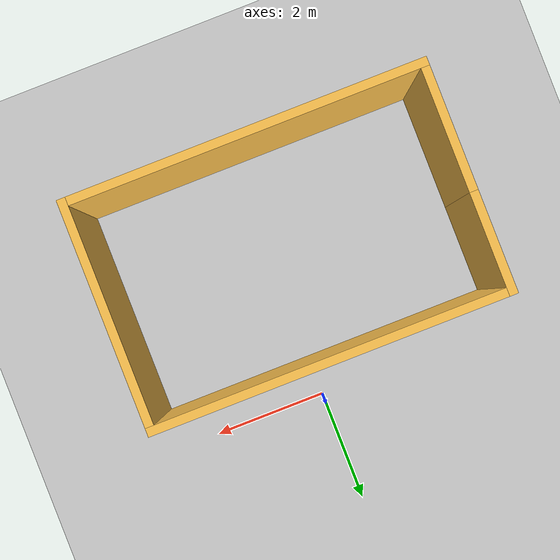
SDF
<sdf version="1.7">
 <world name="default">
  <light name="sun" type="directional">
   <pose>0 0 10 0 -0 0</pose>
   <diffuse>0.8 0.8 0.8 1</diffuse>
   <specular>0.2 0.2 0.2 1</specular>
   <attenuation>
    <range>1000</range>
    <constant>0.9</constant>
    <linear>0.01</linear>
    <quadratic>0.001</quadratic>
   </attenuation>
   <direction>-0.5 0.1 -0.9</direction>
   <spot><inner_angle>0</inner_angle><outer_angle>0</outer_angle><falloff>0</falloff></spot>
  </light>
  <model name="ground_plane">
   <static>1</static>
   <link name="link">
    <collision name="collision">
     <geometry><plane><normal>0 0 1</normal><size>100 100</size></plane></geometry>
     <surface><friction><ode><mu>100</mu><mu2>50</mu2></ode></friction></surface>
    </collision>
    <visual name="visual">
     <cast_shadows>0</cast_shadows>
     <geometry><plane><normal>0 0 1</normal><size>100 100</size></plane></geometry>
     <material>
      <script><uri>file://media/materials/scripts/gazebo.material</uri><name>Gazebo/Grey</name></script>
     </material>
    </visual>
   </link>
  </model>
  <gravity>0 0 -9.8</gravity>
  <magnetic_field>6e-06 2.3e-05 -4.2e-05</magnetic_field>
  <atmosphere type="adiabatic"/>
  <physics type="ode">
   <max_step_size>0.001</max_step_size>
   <real_time_factor>1</real_time_factor>
   <real_time_update_rate>1000</real_time_update_rate>
  </physics>
  <scene><ambient>0.4 0.4 0.4 1</ambient><background>0.7 0.7 0.7 1</background><shadows>1</shadows></scene>
  <audio><device>default</device></audio>
  <spherical_coordinates>
   <surface_model>EARTH_WGS84</surface_model>
   <latitude_deg>0</latitude_deg>
   <longitude_deg>0</longitude_deg>
   <elevation>0</elevation>
   <heading_deg>0</heading_deg>
  </spherical_coordinates>
  <model name="TestBox">
   <pose>-0.33 -2.2925 0 0 -0 0</pose>
   <link name="Wall_0">
    <collision name="Wall_0_Collision">
     <geometry><box><size>1.75 0.15 2.5</size></box></geometry>
     <pose>0 0 1.25 0 -0 0</pose>
    </collision>
    <visual name="Wall_0_Visual">
     <pose>0 0 1.25 0 -0 0</pose>
     <geometry><box><size>1.75 0.15 2.5</size></box></geometry>
     <material>
      <script><uri>file://media/materials/scripts/gazebo.material</uri><name>Gazebo/Grey</name></script>
      <ambient>1 0.764706 0.305882 1</ambient>
     </material>
     <meta><layer>0</layer></meta>
    </visual>
    <pose>-3.05 0.8325 0 0 -0 1.5708</pose>
   </link>
   <link name="Wall_1">
    <collision name="Wall_1_Collision">
     <geometry><box><size>6.25 0.15 2.5</size></box></geometry>
     <pose>0 0 1.25 0 -0 0</pose>
    </collision>
    <visual name="Wall_1_Visual">
     <pose>0 0 1.25 0 -0 0</pose>
     <geometry><box><size>6.25 0.15 2.5</size></box></geometry>
     <material>
      <script><uri>file://media/materials/scripts/gazebo.material</uri><name>Gazebo/Grey</name></script>
      <ambient>1 0.764706 0.305882 1</ambient>
     </material>
     <meta><layer>0</layer></meta>
    </visual>
    <pose>-0 1.6325 0 0 -0 0</pose>
   </link>
   <link name="Wall_2">
    <collision name="Wall_2_Collision">
     <geometry><box><size>4 0.15 2.5</size></box></geometry>
     <pose>0 0 1.25 0 -0 0</pose>
    </collision>
    <visual name="Wall_2_Visual">
     <pose>0 0 1.25 0 -0 0</pose>
     <geometry><box><size>4 0.15 2.5</size></box></geometry>
     <material>
      <script><uri>file://media/materials/scripts/gazebo.material</uri><name>Gazebo/Grey</name></script>
      <ambient>1 0.764706 0.305882 1</ambient>
     </material>
     <meta><layer>0</layer></meta>
    </visual>
    <pose>3.05 -0.2925 0 0 -0 -1.5708</pose>
   </link>
   <link name="Wall_3">
    <collision name="Wall_3_Collision">
     <geometry><box><size>6.25 0.15 2.5</size></box></geometry>
     <pose>0 0 1.25 0 -0 0</pose>
    </collision>
    <visual name="Wall_3_Visual">
     <pose>0 0 1.25 0 -0 0</pose>
     <geometry><box><size>6.25 0.15 2.5</size></box></geometry>
     <material>
      <script><uri>file://media/materials/scripts/gazebo.material</uri><name>Gazebo/Grey</name></script>
      <ambient>1 0.764706 0.305882 1</ambient>
     </material>
     <meta><layer>0</layer></meta>
    </visual>
    <pose>-0 -2.2175 0 0 -0 3.14159</pose>
   </link>
   <link name="Wall_4">
    <collision name="Wall_4_Collision">
     <geometry><box><size>2.4 0.15 2.5</size></box></geometry>
     <pose>0 0 1.25 0 -0 0</pose>
    </collision>
    <visual name="Wall_4_Visual">
     <pose>0 0 1.25 0 -0 0</pose>
     <geometry><box><size>2.4 0.15 2.5</size></box></geometry>
     <material>
      <script><uri>file://media/materials/scripts/gazebo.material</uri><name>Gazebo/Grey</name></script>
      <ambient>1 0.764706 0.305882 1</ambient>
     </material>
     <meta><layer>0</layer></meta>
    </visual>
    <pose>-3.05 -1.0925 0 0 -0 1.5708</pose>
   </link>
   <static>1</static>
  </model>
 </world>
</sdf>
